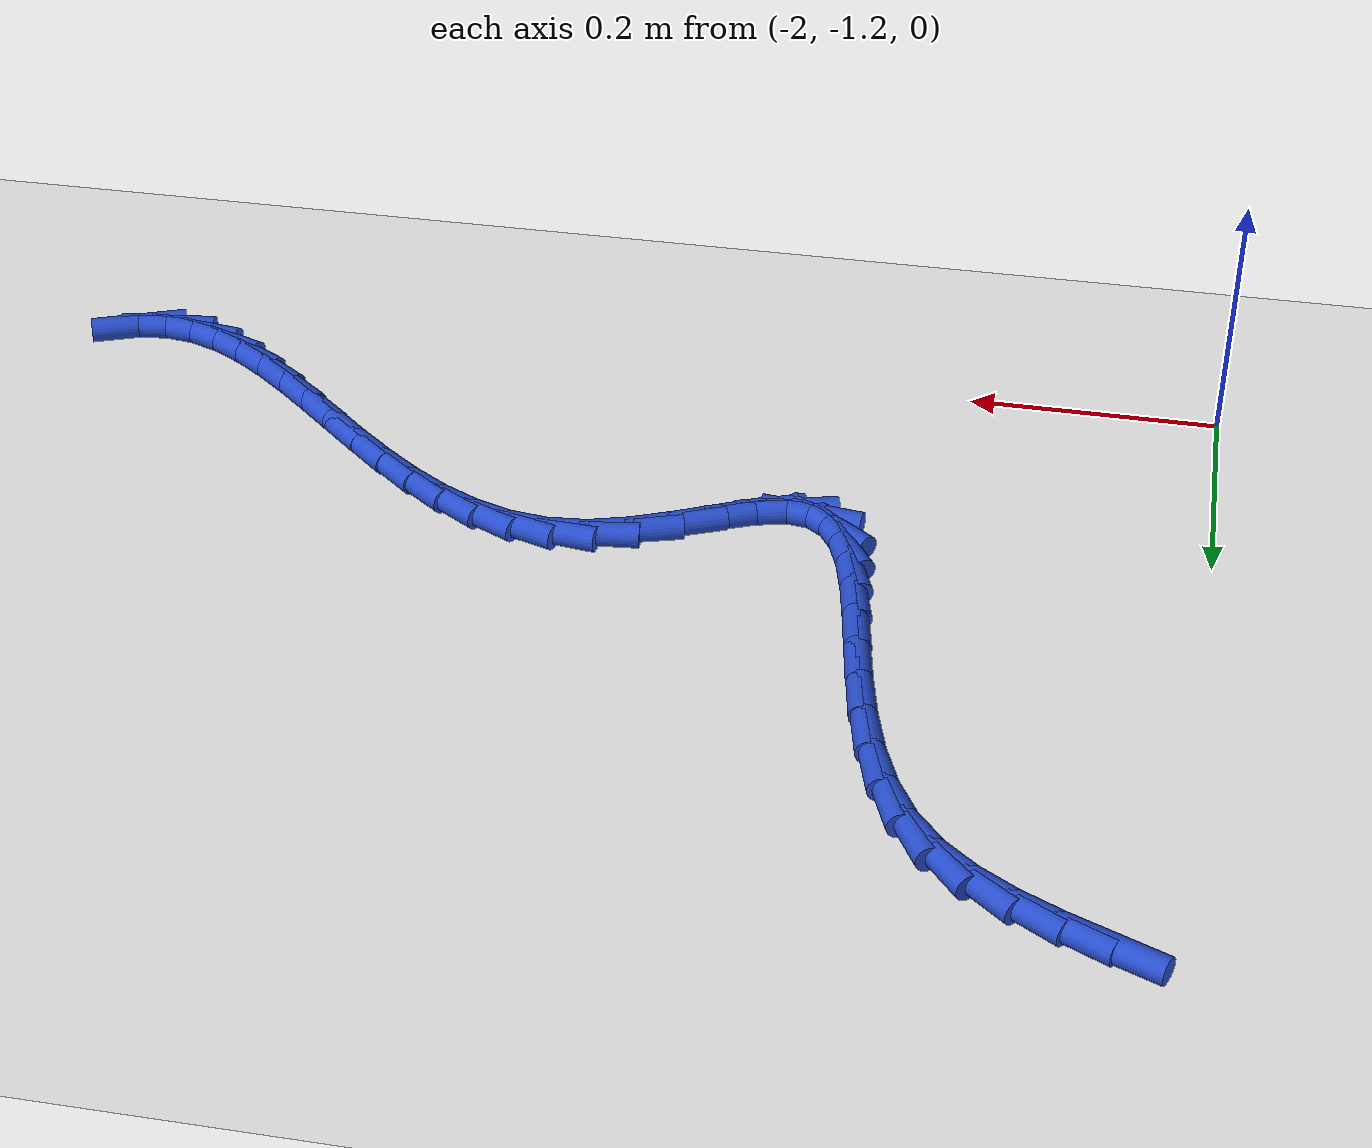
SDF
<sdf version="1.6">
 <world name="default">
  <model name="ground_plane">
   <static>1</static>
   <link name="link">
    <collision name="collision">
     <geometry><plane><normal>0 0 1</normal><size>100 100</size></plane></geometry>
     <surface><friction><ode><mu>100</mu><mu2>50</mu2></ode></friction></surface>
    </collision>
    <visual name="visual">
     <cast_shadows>0</cast_shadows>
     <geometry><plane><normal>0 0 1</normal><size>100 100</size></plane></geometry>
     <material>
      <script><uri>file://media/materials/scripts/gazebo.material</uri><name>Gazebo/WhiteGlow</name></script>
     </material>
    </visual>
   </link>
  </model>
  <model name="line">
   <link name="link_134">
    <pose>-1.9443759269995433 -0.5677079143731318 0.01 0 1.57 -0.3934073456004579</pose>
    <collision name="collision">
     <geometry><cylinder><radius>0.01</radius><length>0.08</length></cylinder></geometry>
    </collision>
    <visual name="visual">
     <material>
      <script><name>Gazebo/Blue</name><uri>file://media/materials/scripts/gazebo.material</uri></script>
     </material>
     <geometry><cylinder><radius>0.01</radius><length>0.08</length></cylinder></geometry>
    </visual>
   </link>
   <link name="link_135">
    <pose>-1.912676274621388 -0.5808646518597033 0.01 0 1.57 -0.4522533925048718</pose>
    <collision name="collision">
     <geometry><cylinder><radius>0.01</radius><length>0.08</length></cylinder></geometry>
    </collision>
    <visual name="visual">
     <material>
      <script><name>Gazebo/Blue</name><uri>file://media/materials/scripts/gazebo.material</uri></script>
     </material>
     <geometry><cylinder><radius>0.01</radius><length>0.08</length></cylinder></geometry>
    </visual>
   </link>
   <link name="link_136">
    <pose>-1.8815582888691562 -0.5959829301288632 0.01 0 1.57 -0.5523343003446012</pose>
    <collision name="collision">
     <geometry><cylinder><radius>0.01</radius><length>0.08</length></cylinder></geometry>
    </collision>
    <visual name="visual">
     <material>
      <script><name>Gazebo/Blue</name><uri>file://media/materials/scripts/gazebo.material</uri></script>
     </material>
     <geometry><cylinder><radius>0.01</radius><length>0.08</length></cylinder></geometry>
    </visual>
   </link>
   <link name="link_137">
    <pose>-1.8522927821748558 -0.6140198934977064 0.01 0 1.57 -0.6976122589023835</pose>
    <collision name="collision">
     <geometry><cylinder><radius>0.01</radius><length>0.08</length></cylinder></geometry>
    </collision>
    <visual name="visual">
     <material>
      <script><name>Gazebo/Blue</name><uri>file://media/materials/scripts/gazebo.material</uri></script>
     </material>
     <geometry><cylinder><radius>0.01</radius><length>0.08</length></cylinder></geometry>
    </visual>
   </link>
   <link name="link_138">
    <pose>-1.8261505669704958 -0.6359326862833274 0.01 0 1.57 -0.886743228948809</pose>
    <collision name="collision">
     <geometry><cylinder><radius>0.01</radius><length>0.08</length></cylinder></geometry>
    </collision>
    <visual name="visual">
     <material>
      <script><name>Gazebo/Blue</name><uri>file://media/materials/scripts/gazebo.material</uri></script>
     </material>
     <geometry><cylinder><radius>0.01</radius><length>0.08</length></cylinder></geometry>
    </visual>
   </link>
   <link name="link_139">
    <pose>-1.8043700949203174 -0.6626445075542067 0.01 0 1.57 -1.072276801561911</pose>
    <collision name="collision">
     <geometry><cylinder><radius>0.01</radius><length>0.08</length></cylinder></geometry>
    </collision>
    <visual name="visual">
     <material>
      <script><name>Gazebo/Blue</name><uri>file://media/materials/scripts/gazebo.material</uri></script>
     </material>
     <geometry><cylinder><radius>0.01</radius><length>0.08</length></cylinder></geometry>
    </visual>
   </link>
   <link name="link_140">
    <pose>-1.787250166445585 -0.694092896975329 0.01 0 1.57 -1.209628919233181</pose>
    <collision name="collision">
     <geometry><cylinder><radius>0.01</radius><length>0.08</length></cylinder></geometry>
    </collision>
    <visual name="visual">
     <material>
      <script><name>Gazebo/Blue</name><uri>file://media/materials/scripts/gazebo.material</uri></script>
     </material>
     <geometry><cylinder><radius>0.01</radius><length>0.08</length></cylinder></geometry>
    </visual>
   </link>
   <link name="link_141">
    <pose>-1.7740265834065647 -0.7291003480332355 0.01 0 1.57 -1.3053440677860042</pose>
    <collision name="collision">
     <geometry><cylinder><radius>0.01</radius><length>0.08</length></cylinder></geometry>
    </collision>
    <visual name="visual">
     <material>
      <script><name>Gazebo/Blue</name><uri>file://media/materials/scripts/gazebo.material</uri></script>
     </material>
     <geometry><cylinder><radius>0.01</radius><length>0.08</length></cylinder></geometry>
    </visual>
   </link>
   <link name="link_142">
    <pose>-1.763877999726384 -0.7664294081418692 0.01 0 1.57 -1.3680926049627875</pose>
    <collision name="collision">
     <geometry><cylinder><radius>0.01</radius><length>0.08</length></cylinder></geometry>
    </collision>
    <visual name="visual">
     <material>
      <script><name>Gazebo/Blue</name><uri>file://media/materials/scripts/gazebo.material</uri></script>
     </material>
     <geometry><cylinder><radius>0.01</radius><length>0.08</length></cylinder></geometry>
    </visual>
   </link>
   <link name="link_143">
    <pose>-1.7559830693281702 -0.8048426247151722 0.01 0 1.57 -1.4034621854544358</pose>
    <collision name="collision">
     <geometry><cylinder><radius>0.01</radius><length>0.08</length></cylinder></geometry>
    </collision>
    <visual name="visual">
     <material>
      <script><name>Gazebo/Blue</name><uri>file://media/materials/scripts/gazebo.material</uri></script>
     </material>
     <geometry><cylinder><radius>0.01</radius><length>0.08</length></cylinder></geometry>
    </visual>
   </link>
   <link name="link_144">
    <pose>-1.749520446135051 -0.8431025451670872 0.01 0 1.57 -1.4133949950557312</pose>
    <collision name="collision">
     <geometry><cylinder><radius>0.01</radius><length>0.08</length></cylinder></geometry>
    </collision>
    <visual name="visual">
     <material>
      <script><name>Gazebo/Blue</name><uri>file://media/materials/scripts/gazebo.material</uri></script>
     </material>
     <geometry><cylinder><radius>0.01</radius><length>0.08</length></cylinder></geometry>
    </visual>
   </link>
   <link name="link_145">
    <pose>-1.7436687840701537 -0.8799717169115547 0.01 0 1.57 -1.3955712418256305</pose>
    <collision name="collision">
     <geometry><cylinder><radius>0.01</radius><length>0.08</length></cylinder></geometry>
    </collision>
    <visual name="visual">
     <material>
      <script><name>Gazebo/Blue</name><uri>file://media/materials/scripts/gazebo.material</uri></script>
     </material>
     <geometry><cylinder><radius>0.01</radius><length>0.08</length></cylinder></geometry>
    </visual>
   </link>
   <link name="link_146">
    <pose>-1.7376067370566068 -0.914212687362518 0.01 0 1.57 -1.3413706979389806</pose>
    <collision name="collision">
     <geometry><cylinder><radius>0.01</radius><length>0.08</length></cylinder></geometry>
    </collision>
    <visual name="visual">
     <material>
      <script><name>Gazebo/Blue</name><uri>file://media/materials/scripts/gazebo.material</uri></script>
     </material>
     <geometry><cylinder><radius>0.01</radius><length>0.08</length></cylinder></geometry>
    </visual>
   </link>
   <link name="link_147">
    <pose>-1.7305129590175372 -0.9445880039339191 0.01 0 1.57 -1.2305451601240183</pose>
    <collision name="collision">
     <geometry><cylinder><radius>0.01</radius><length>0.08</length></cylinder></geometry>
    </collision>
    <visual name="visual">
     <material>
      <script><name>Gazebo/Blue</name><uri>file://media/materials/scripts/gazebo.material</uri></script>
     </material>
     <geometry><cylinder><radius>0.01</radius><length>0.08</length></cylinder></geometry>
    </visual>
   </link>
   <link name="link_148">
    <pose>-1.7215661038760717 -0.9698602140397002 0.01 0 1.57 -1.0202519619118002</pose>
    <collision name="collision">
     <geometry><cylinder><radius>0.01</radius><length>0.08</length></cylinder></geometry>
    </collision>
    <visual name="visual">
     <material>
      <script><name>Gazebo/Blue</name><uri>file://media/materials/scripts/gazebo.material</uri></script>
     </material>
     <geometry><cylinder><radius>0.01</radius><length>0.08</length></cylinder></geometry>
    </visual>
   </link>
   <link name="link_149">
    <pose>-1.7099448255553393 -0.9887918650938028 0.01 0 1.57 -0.644171959564091</pose>
    <collision name="collision">
     <geometry><cylinder><radius>0.01</radius><length>0.08</length></cylinder></geometry>
    </collision>
    <visual name="visual">
     <material>
      <script><name>Gazebo/Blue</name><uri>file://media/materials/scripts/gazebo.material</uri></script>
     </material>
     <geometry><cylinder><radius>0.01</radius><length>0.08</length></cylinder></geometry>
    </visual>
   </link>
   <link name="link_150">
    <pose>-1.6948277779784677 -1.0001455045101695 0.01 0 1.57 -0.13021089887986084</pose>
    <collision name="collision">
     <geometry><cylinder><radius>0.01</radius><length>0.08</length></cylinder></geometry>
    </collision>
    <visual name="visual">
     <material>
      <script><name>Gazebo/Blue</name><uri>file://media/materials/scripts/gazebo.material</uri></script>
     </material>
     <geometry><cylinder><radius>0.01</radius><length>0.08</length></cylinder></geometry>
    </visual>
   </link>
   <link name="link_151">
    <pose>-1.675396328158904 -1.0026900883757472 0.01 0 1.57 0.2527375703547174</pose>
    <collision name="collision">
     <geometry><cylinder><radius>0.01</radius><length>0.08</length></cylinder></geometry>
    </collision>
    <visual name="visual">
     <material>
      <script><name>Gazebo/Blue</name><uri>file://media/materials/scripts/gazebo.material</uri></script>
     </material>
     <geometry><cylinder><radius>0.01</radius><length>0.08</length></cylinder></geometry>
    </visual>
   </link>
   <link name="link_152">
    <pose>-1.6513791634527357 -0.9964874147731798 0.01 0 1.57 0.4103219062922817</pose>
    <collision name="collision">
     <geometry><cylinder><radius>0.01</radius><length>0.08</length></cylinder></geometry>
    </collision>
    <visual name="visual">
     <material>
      <script><name>Gazebo/Blue</name><uri>file://media/materials/scripts/gazebo.material</uri></script>
     </material>
     <geometry><cylinder><radius>0.01</radius><length>0.08</length></cylinder></geometry>
    </visual>
   </link>
   <link name="link_153">
    <pose>-1.6237127113924463 -0.9844521215177093 0.01 0 1.57 0.449334117388987</pose>
    <collision name="collision">
     <geometry><cylinder><radius>0.01</radius><length>0.08</length></cylinder></geometry>
    </collision>
    <visual name="visual">
     <material>
      <script><name>Gazebo/Blue</name><uri>file://media/materials/scripts/gazebo.material</uri></script>
     </material>
     <geometry><cylinder><radius>0.01</radius><length>0.08</length></cylinder></geometry>
    </visual>
   </link>
   <link name="link_154">
    <pose>-1.5934947573096365 -0.9698799945800152 0.01 0 1.57 0.4112655027087675</pose>
    <collision name="collision">
     <geometry><cylinder><radius>0.01</radius><length>0.08</length></cylinder></geometry>
    </collision>
    <visual name="visual">
     <material>
      <script><name>Gazebo/Blue</name><uri>file://media/materials/scripts/gazebo.material</uri></script>
     </material>
     <geometry><cylinder><radius>0.01</radius><length>0.08</length></cylinder></geometry>
    </visual>
   </link>
   <link name="link_155">
    <pose>-1.561823086535906 -0.9560668199307767 0.01 0 1.57 0.2957524390227392</pose>
    <collision name="collision">
     <geometry><cylinder><radius>0.01</radius><length>0.08</length></cylinder></geometry>
    </collision>
    <visual name="visual">
     <material>
      <script><name>Gazebo/Blue</name><uri>file://media/materials/scripts/gazebo.material</uri></script>
     </material>
     <geometry><cylinder><radius>0.01</radius><length>0.08</length></cylinder></geometry>
    </visual>
   </link>
   <link name="link_156">
    <pose>-1.5297954844028534 -0.9463083835406718 0.01 0 1.57 0.09262534539778547</pose>
    <collision name="collision">
     <geometry><cylinder><radius>0.01</radius><length>0.08</length></cylinder></geometry>
    </collision>
    <visual name="visual">
     <material>
      <script><name>Gazebo/Blue</name><uri>file://media/materials/scripts/gazebo.material</uri></script>
     </material>
     <geometry><cylinder><radius>0.01</radius><length>0.08</length></cylinder></geometry>
    </visual>
   </link>
   <link name="link_157">
    <pose>-1.4983719208351578 -0.9433894126068727 0.01 0 1.57 -0.12676604134851227</pose>
    <collision name="collision">
     <geometry><cylinder><radius>0.01</radius><length>0.08</length></cylinder></geometry>
    </collision>
    <visual name="visual">
     <material>
      <script><name>Gazebo/Blue</name><uri>file://media/materials/scripts/gazebo.material</uri></script>
     </material>
     <geometry><cylinder><radius>0.01</radius><length>0.08</length></cylinder></geometry>
    </visual>
   </link>
   <link name="link_158">
    <pose>-1.4677564120578044 -0.9472913427408971 0.01 0 1.57 -0.315538093891112</pose>
    <collision name="collision">
     <geometry><cylinder><radius>0.01</radius><length>0.08</length></cylinder></geometry>
    </collision>
    <visual name="visual">
     <material>
      <script><name>Gazebo/Blue</name><uri>file://media/materials/scripts/gazebo.material</uri></script>
     </material>
     <geometry><cylinder><radius>0.01</radius><length>0.08</length></cylinder></geometry>
    </visual>
   </link>
   <link name="link_159">
    <pose>-1.4378951182980095 -0.9570394060868576 0.01 0 1.57 -0.4646907803398608</pose>
    <collision name="collision">
     <geometry><cylinder><radius>0.01</radius><length>0.08</length></cylinder></geometry>
    </collision>
    <visual name="visual">
     <material>
      <script><name>Gazebo/Blue</name><uri>file://media/materials/scripts/gazebo.material</uri></script>
     </material>
     <geometry><cylinder><radius>0.01</radius><length>0.08</length></cylinder></geometry>
    </visual>
   </link>
   <link name="link_160">
    <pose>-1.4087339800955017 -0.9716580201250895 0.01 0 1.57 -0.5758525141502777</pose>
    <collision name="collision">
     <geometry><cylinder><radius>0.01</radius><length>0.08</length></cylinder></geometry>
    </collision>
    <visual name="visual">
     <material>
      <script><name>Gazebo/Blue</name><uri>file://media/materials/scripts/gazebo.material</uri></script>
     </material>
     <geometry><cylinder><radius>0.01</radius><length>0.08</length></cylinder></geometry>
    </visual>
   </link>
   <link name="link_161">
    <pose>-1.380218937990006 -0.9901716023359273 0.01 0 1.57 -0.6546538069295599</pose>
    <collision name="collision">
     <geometry><cylinder><radius>0.01</radius><length>0.08</length></cylinder></geometry>
    </collision>
    <visual name="visual">
     <material>
      <script><name>Gazebo/Blue</name><uri>file://media/materials/scripts/gazebo.material</uri></script>
     </material>
     <geometry><cylinder><radius>0.01</radius><length>0.08</length></cylinder></geometry>
    </visual>
   </link>
   <link name="link_162">
    <pose>-1.3522959325212494 -1.0116045701997063 0.01 0 1.57 -0.7065995812111829</pose>
    <collision name="collision">
     <geometry><cylinder><radius>0.01</radius><length>0.08</length></cylinder></geometry>
    </collision>
    <visual name="visual">
     <material>
      <script><name>Gazebo/Blue</name><uri>file://media/materials/scripts/gazebo.material</uri></script>
     </material>
     <geometry><cylinder><radius>0.01</radius><length>0.08</length></cylinder></geometry>
    </visual>
   </link>
   <link name="link_163">
    <pose>-1.3249109042289589 -1.03498134119676 0.01 0 1.57 -0.735560181794248</pose>
    <collision name="collision">
     <geometry><cylinder><radius>0.01</radius><length>0.08</length></cylinder></geometry>
    </collision>
    <visual name="visual">
     <material>
      <script><name>Gazebo/Blue</name><uri>file://media/materials/scripts/gazebo.material</uri></script>
     </material>
     <geometry><cylinder><radius>0.01</radius><length>0.08</length></cylinder></geometry>
    </visual>
   </link>
   <link name="link_164">
    <pose>-1.2980097936528614 -1.0593263328074238 0.01 0 1.57 -0.7434297181612173</pose>
    <collision name="collision">
     <geometry><cylinder><radius>0.01</radius><length>0.08</length></cylinder></geometry>
    </collision>
    <visual name="visual">
     <material>
      <script><name>Gazebo/Blue</name><uri>file://media/materials/scripts/gazebo.material</uri></script>
     </material>
     <geometry><cylinder><radius>0.01</radius><length>0.08</length></cylinder></geometry>
    </visual>
   </link>
   <link name="link_165">
    <pose>-1.271538541332683 -1.0836639625120323 0.01 0 1.57 -0.730029927803176</pose>
    <collision name="collision">
     <geometry><cylinder><radius>0.01</radius><length>0.08</length></cylinder></geometry>
    </collision>
    <visual name="visual">
     <material>
      <script><name>Gazebo/Blue</name><uri>file://media/materials/scripts/gazebo.material</uri></script>
     </material>
     <geometry><cylinder><radius>0.01</radius><length>0.08</length></cylinder></geometry>
    </visual>
   </link>
   <link name="link_166">
    <pose>-1.2454430878081495 -1.1070186477909205 0.01 0 1.57 -0.6928591592160732</pose>
    <collision name="collision">
     <geometry><cylinder><radius>0.01</radius><length>0.08</length></cylinder></geometry>
    </collision>
    <visual name="visual">
     <material>
      <script><name>Gazebo/Blue</name><uri>file://media/materials/scripts/gazebo.material</uri></script>
     </material>
     <geometry><cylinder><radius>0.01</radius><length>0.08</length></cylinder></geometry>
    </visual>
   </link>
   <link name="link_167">
    <pose>-1.2196693736189888 -1.128414806124422 0.01 0 1.57 -0.6265412799244285</pose>
    <collision name="collision">
     <geometry><cylinder><radius>0.01</radius><length>0.08</length></cylinder></geometry>
    </collision>
    <visual name="visual">
     <material>
      <script><name>Gazebo/Blue</name><uri>file://media/materials/scripts/gazebo.material</uri></script>
     </material>
     <geometry><cylinder><radius>0.01</radius><length>0.08</length></cylinder></geometry>
    </visual>
   </link>
   <link name="link_168">
    <pose>-1.1941633393049267 -1.146876854992872 0.01 0 1.57 -0.5221081623518246</pose>
    <collision name="collision">
     <geometry><cylinder><radius>0.01</radius><length>0.08</length></cylinder></geometry>
    </collision>
    <visual name="visual">
     <material>
      <script><name>Gazebo/Blue</name><uri>file://media/materials/scripts/gazebo.material</uri></script>
     </material>
     <geometry><cylinder><radius>0.01</radius><length>0.08</length></cylinder></geometry>
    </visual>
   </link>
   <link name="link_169">
    <pose>-1.1688709254056906 -1.1614292118766059 0.01 0 1.57 -0.3671946469044232</pose>
    <collision name="collision">
     <geometry><cylinder><radius>0.01</radius><length>0.08</length></cylinder></geometry>
    </collision>
    <visual name="visual">
     <material>
      <script><name>Gazebo/Blue</name><uri>file://media/materials/scripts/gazebo.material</uri></script>
     </material>
     <geometry><cylinder><radius>0.01</radius><length>0.08</length></cylinder></geometry>
    </visual>
   </link>
   <link name="link_170">
    <pose>-1.1437380724610056 -1.1710962942559577 0.01 0 1.57 -0.1509261217201143</pose>
    <collision name="collision">
     <geometry><cylinder><radius>0.01</radius><length>0.08</length></cylinder></geometry>
    </collision>
    <visual name="visual">
     <material>
      <script><name>Gazebo/Blue</name><uri>file://media/materials/scripts/gazebo.material</uri></script>
     </material>
     <geometry><cylinder><radius>0.01</radius><length>0.08</length></cylinder></geometry>
    </visual>
   </link>
   <link name="link_171">
    <pose>-1.1187107210106002 -1.174902519611262 0.01 0 1.57 0.12067562587533309</pose>
    <collision name="collision">
     <geometry><cylinder><radius>0.01</radius><length>0.08</length></cylinder></geometry>
    </collision>
    <visual name="visual">
     <material>
      <script><name>Gazebo/Blue</name><uri>file://media/materials/scripts/gazebo.material</uri></script>
     </material>
     <geometry><cylinder><radius>0.01</radius><length>0.08</length></cylinder></geometry>
    </visual>
   </link>
   <link name="link_172">
    <pose>-1.0937347436492628 -1.1718738116573573 0.01 0 1.57 0.38334305431713334</pose>
    <collision name="collision">
     <geometry><cylinder><radius>0.01</radius><length>0.08</length></cylinder></geometry>
    </collision>
    <visual name="visual">
     <material>
      <script><name>Gazebo/Blue</name><uri>file://media/materials/scripts/gazebo.material</uri></script>
     </material>
     <geometry><cylinder><radius>0.01</radius><length>0.08</length></cylinder></geometry>
    </visual>
   </link>
  </model>
 </world>
</sdf>
